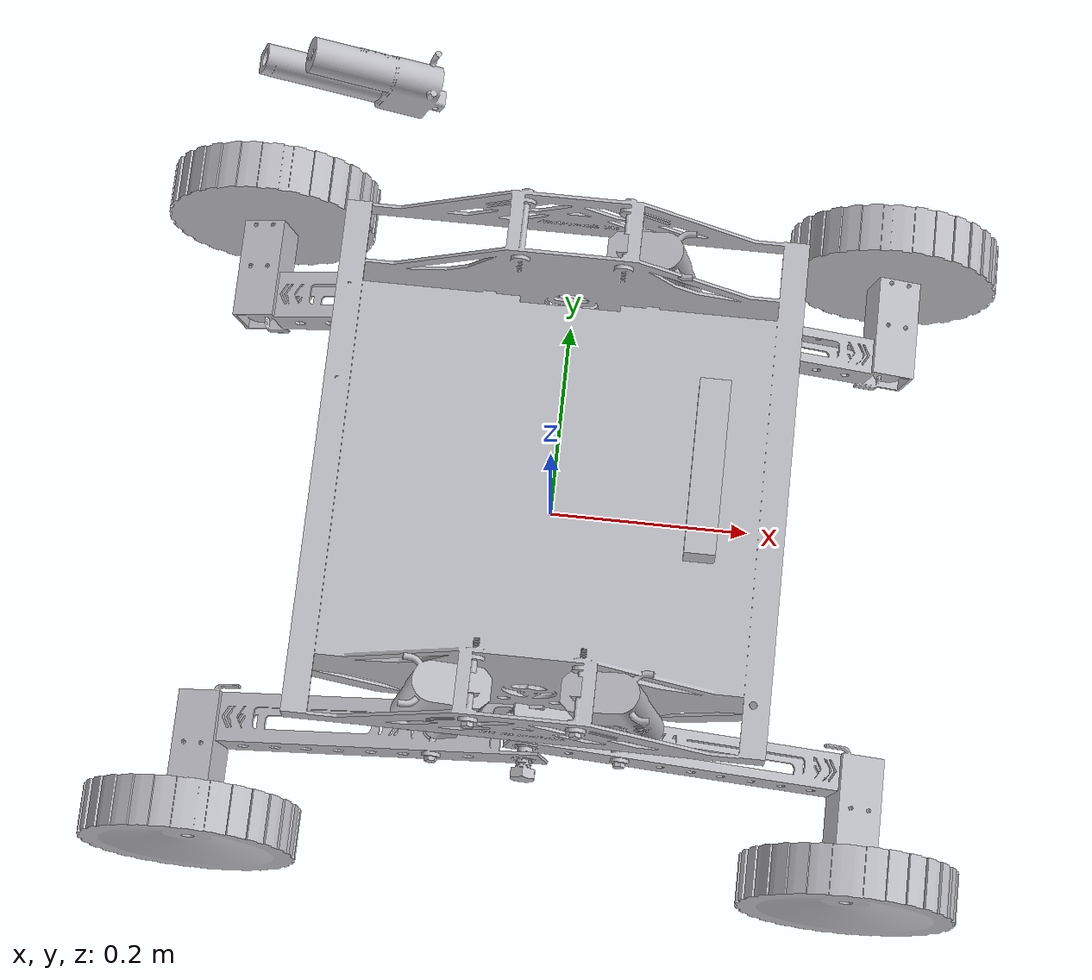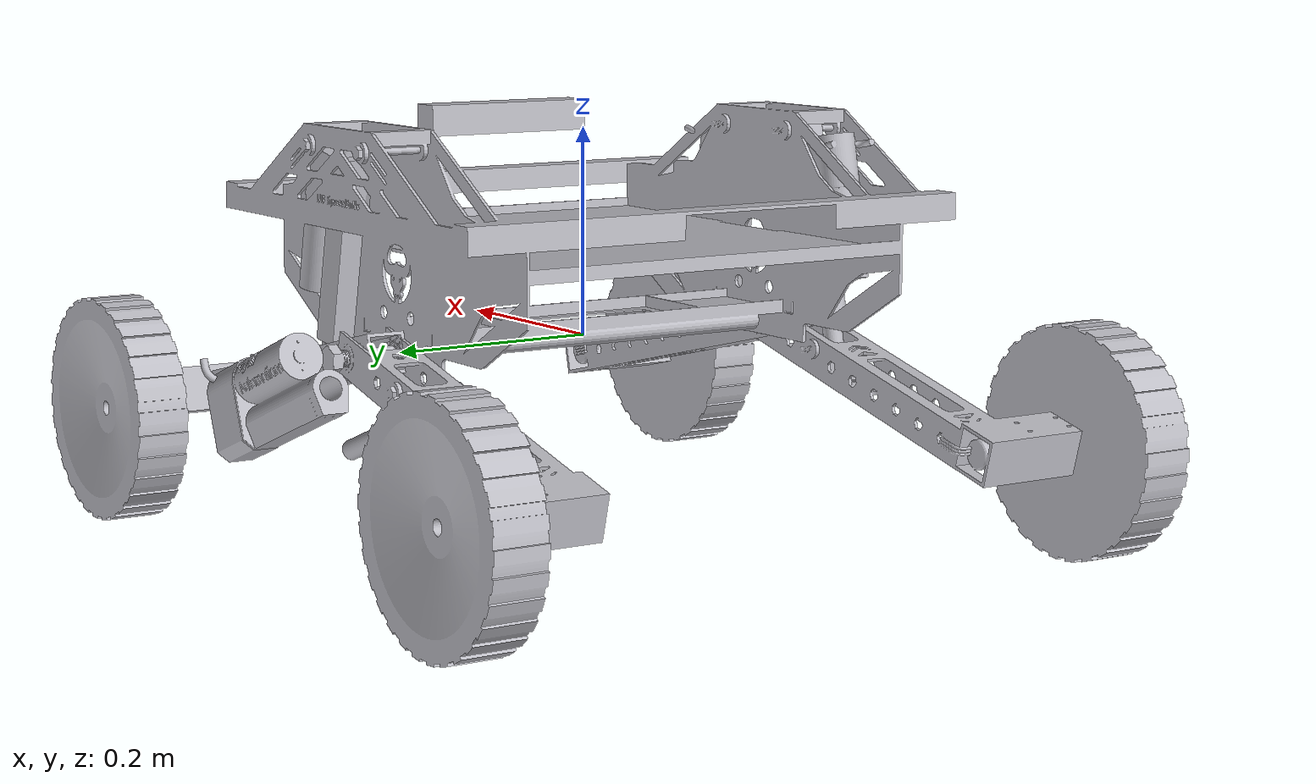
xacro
<?xml version="1.0" ?>
<robot name="urdf" xmlns:xacro="http://www.ros.org/wiki/xacro">

<xacro:include filename="$(find urdf_description)/urdf/materials.xacro" />
<xacro:include filename="$(find urdf_description)/urdf/urdf.trans" />
<xacro:include filename="$(find urdf_description)/urdf/urdf.gazebo" />

<link name="base_link">
  <inertial>
    <origin xyz="0.0013343149399823772 0.00028358189866519725 0.09528357708891128" rpy="0 0 0"/>
    <mass value="12.220889046488532"/>
    <inertia ixx="0.388779" iyy="0.234761" izz="0.562331" ixy="0.000927" iyz="-0.0001" ixz="-0.000707"/>
  </inertial>
  <visual>
    <origin xyz="0 0 0" rpy="0 0 0"/>
    <geometry>
      <mesh filename="file://$(find urdf_description)/meshes/base_link.stl" scale="0.001 0.001 0.001"/>
    </geometry>
    <material name="silver"/>
  </visual>
  <collision>
    <origin xyz="0 0 0" rpy="0 0 0"/>
    <geometry>
      <mesh filename="file://$(find urdf_description)/meshes/base_link.stl" scale="0.001 0.001 0.001"/>
    </geometry>
  </collision>
</link>

<link name="Wheel_f1_1">
  <inertial>
    <origin xyz="-1.1111022085730227e-07 -0.02369331247106643 -1.6015604767383174e-07" rpy="0 0 0"/>
    <mass value="13.815850014548804"/>
    <inertia ixx="0.046183" iyy="0.087048" izz="0.046183" ixy="0.0" iyz="-0.0" ixz="0.0"/>
  </inertial>
  <visual>
    <origin xyz="0.332727 0.312987 0.083488" rpy="0 0 0"/>
    <geometry>
      <mesh filename="file://$(find urdf_description)/meshes/Wheel_f1_1.stl" scale="0.001 0.001 0.001"/>
    </geometry>
    <material name="silver"/>
  </visual>
  <collision>
    <origin xyz="0.332727 0.312987 0.083488" rpy="0 0 0"/>
    <geometry>
      <mesh filename="file://$(find urdf_description)/meshes/Wheel_f1_1.stl" scale="0.001 0.001 0.001"/>
    </geometry>
  </collision>
</link>

<link name="Wheel_b1_1">
  <inertial>
    <origin xyz="-4.454933729136634e-07 -0.02369331247106693 3.717001979403056e-07" rpy="0 0 0"/>
    <mass value="13.815850014548804"/>
    <inertia ixx="0.046183" iyy="0.087048" izz="0.046183" ixy="-0.0" iyz="-0.0" ixz="-0.0"/>
  </inertial>
  <visual>
    <origin xyz="-0.334113 0.312987 0.077759" rpy="0 0 0"/>
    <geometry>
      <mesh filename="file://$(find urdf_description)/meshes/Wheel_b1_1.stl" scale="0.001 0.001 0.001"/>
    </geometry>
    <material name="silver"/>
  </visual>
  <collision>
    <origin xyz="-0.334113 0.312987 0.077759" rpy="0 0 0"/>
    <geometry>
      <mesh filename="file://$(find urdf_description)/meshes/Wheel_b1_1.stl" scale="0.001 0.001 0.001"/>
    </geometry>
  </collision>
</link>

<link name="Wheel_f2_1">
  <inertial>
    <origin xyz="1.7611029162756253e-07 0.023693312471066874 3.839404488781284e-09" rpy="0 0 0"/>
    <mass value="13.815850014548804"/>
    <inertia ixx="0.046183" iyy="0.087048" izz="0.046183" ixy="0.0" iyz="0.0" ixz="-0.0"/>
  </inertial>
  <visual>
    <origin xyz="0.289603 -0.312987 0.183869" rpy="0 0 0"/>
    <geometry>
      <mesh filename="file://$(find urdf_description)/meshes/Wheel_f2_1.stl" scale="0.001 0.001 0.001"/>
    </geometry>
    <material name="silver"/>
  </visual>
  <collision>
    <origin xyz="0.289603 -0.312987 0.183869" rpy="0 0 0"/>
    <geometry>
      <mesh filename="file://$(find urdf_description)/meshes/Wheel_f2_1.stl" scale="0.001 0.001 0.001"/>
    </geometry>
  </collision>
</link>

<link name="Wheel_b2_1">
  <inertial>
    <origin xyz="-6.526775264692475e-08 0.02369331247106704 -6.167566141135339e-08" rpy="0 0 0"/>
    <mass value="13.815850014548804"/>
    <inertia ixx="0.046183" iyy="0.087048" izz="0.046183" ixy="0.0" iyz="0.0" ixz="-0.0"/>
  </inertial>
  <visual>
    <origin xyz="-0.331827 -0.312987 0.086997" rpy="0 0 0"/>
    <geometry>
      <mesh filename="file://$(find urdf_description)/meshes/Wheel_b2_1.stl" scale="0.001 0.001 0.001"/>
    </geometry>
    <material name="silver"/>
  </visual>
  <collision>
    <origin xyz="-0.331827 -0.312987 0.086997" rpy="0 0 0"/>
    <geometry>
      <mesh filename="file://$(find urdf_description)/meshes/Wheel_b2_1.stl" scale="0.001 0.001 0.001"/>
    </geometry>
  </collision>
</link>

<link name="Suspension_f1_1">
  <inertial>
    <origin xyz="-0.24223400246657378 -0.044365793674640275 -0.061553523607869386" rpy="0 0 0"/>
    <mass value="2.1993493776501816"/>
    <inertia ixx="0.004283" iyy="0.029631" izz="0.029875" ixy="-0.003562" iyz="-0.000863" ixz="-0.006668"/>
  </inertial>
  <visual>
    <origin xyz="-0.0 0.2032 0.0" rpy="0 0 0"/>
    <geometry>
      <mesh filename="file://$(find urdf_description)/meshes/Suspension_f1_1.stl" scale="0.001 0.001 0.001"/>
    </geometry>
    <material name="silver"/>
  </visual>
  <collision>
    <origin xyz="-0.0 0.2032 0.0" rpy="0 0 0"/>
    <geometry>
      <mesh filename="file://$(find urdf_description)/meshes/Suspension_f1_1.stl" scale="0.001 0.001 0.001"/>
    </geometry>
  </collision>
</link>

<link name="Suspension_f2_1">
  <inertial>
    <origin xyz="-0.2105956784748399 0.044365793674640774 -0.1345942362333628" rpy="0 0 0"/>
    <mass value="2.19934937765018"/>
    <inertia ixx="0.010794" iyy="0.029631" izz="0.023365" ixy="0.003109" iyz="0.001939" ixz="-0.012988"/>
  </inertial>
  <visual>
    <origin xyz="-0.0 -0.2032 0.0" rpy="0 0 0"/>
    <geometry>
      <mesh filename="file://$(find urdf_description)/meshes/Suspension_f2_1.stl" scale="0.001 0.001 0.001"/>
    </geometry>
    <material name="silver"/>
  </visual>
  <collision>
    <origin xyz="-0.0 -0.2032 0.0" rpy="0 0 0"/>
    <geometry>
      <mesh filename="file://$(find urdf_description)/meshes/Suspension_f2_1.stl" scale="0.001 0.001 0.001"/>
    </geometry>
  </collision>
</link>

<link name="Suspension_b2_1">
  <inertial>
    <origin xyz="0.23818736601940063 0.04183240373390654 -0.06315287162159193" rpy="0 0 0"/>
    <mass value="2.1332036975982693"/>
    <inertia ixx="0.004602" iyy="0.032238" izz="0.032209" ixy="-0.004367" iyz="0.001111" ixz="0.007597"/>
  </inertial>
  <visual>
    <origin xyz="-0.0 -0.2032 0.0" rpy="0 0 0"/>
    <geometry>
      <mesh filename="file://$(find urdf_description)/meshes/Suspension_b2_1.stl" scale="0.001 0.001 0.001"/>
    </geometry>
    <material name="silver"/>
  </visual>
  <collision>
    <origin xyz="-0.0 -0.2032 0.0" rpy="0 0 0"/>
    <geometry>
      <mesh filename="file://$(find urdf_description)/meshes/Suspension_b2_1.stl" scale="0.001 0.001 0.001"/>
    </geometry>
  </collision>
</link>

<link name="Suspension_b1_1">
  <inertial>
    <origin xyz="0.23984757828794934 -0.04183240373390662 -0.05652119703901942" rpy="0 0 0"/>
    <mass value="2.1332036975982764"/>
    <inertia ixx="0.004202" iyy="0.032238" izz="0.03261" ixy="0.004396" iyz="-0.000989" ixz="0.00682"/>
  </inertial>
  <visual>
    <origin xyz="-0.0 0.2032 0.0" rpy="0 0 0"/>
    <geometry>
      <mesh filename="file://$(find urdf_description)/meshes/Suspension_b1_1.stl" scale="0.001 0.001 0.001"/>
    </geometry>
    <material name="silver"/>
  </visual>
  <collision>
    <origin xyz="-0.0 0.2032 0.0" rpy="0 0 0"/>
    <geometry>
      <mesh filename="file://$(find urdf_description)/meshes/Suspension_b1_1.stl" scale="0.001 0.001 0.001"/>
    </geometry>
  </collision>
</link>

<link name="4InchRod_b1_1">
  <inertial>
    <origin xyz="-0.012966113775044225 -4.335870901206462e-08 0.06219411224027272" rpy="0 0 0"/>
    <mass value="0.3175605691662021"/>
    <inertia ixx="0.000523" iyy="0.000546" izz="3.7e-05" ixy="-0.0" iyz="0.0" ixz="0.000106"/>
  </inertial>
  <visual>
    <origin xyz="-0.094063 0.223274 0.016277" rpy="0 0 0"/>
    <geometry>
      <mesh filename="file://$(find urdf_description)/meshes/4InchRod_b1_1.stl" scale="0.001 0.001 0.001"/>
    </geometry>
    <material name="silver"/>
  </visual>
  <collision>
    <origin xyz="-0.094063 0.223274 0.016277" rpy="0 0 0"/>
    <geometry>
      <mesh filename="file://$(find urdf_description)/meshes/4InchRod_b1_1.stl" scale="0.001 0.001 0.001"/>
    </geometry>
  </collision>
</link>

<link name="4InchBase_b1_1">
  <inertial>
    <origin xyz="-0.2252917375182119 0.06657896959015258 0.06967167607247043" rpy="0 0 0"/>
    <mass value="2.5860638753484677"/>
    <inertia ixx="0.006022" iyy="0.007076" izz="0.001574" ixy="0.0" iyz="-0.0" ixz="0.000806"/>
  </inertial>
  <visual>
    <origin xyz="-0.308737 0.289862 -0.048001" rpy="0 0 0"/>
    <geometry>
      <mesh filename="file://$(find urdf_description)/meshes/4InchBase_b1_1.stl" scale="0.001 0.001 0.001"/>
    </geometry>
    <material name="silver"/>
  </visual>
  <collision>
    <origin xyz="-0.308737 0.289862 -0.048001" rpy="0 0 0"/>
    <geometry>
      <mesh filename="file://$(find urdf_description)/meshes/4InchBase_b1_1.stl" scale="0.001 0.001 0.001"/>
    </geometry>
  </collision>
</link>

<link name="4InchRod_f1_1">
  <inertial>
    <origin xyz="0.012786959833396741 -4.333333336603573e-08 0.0622314357296538" rpy="0 0 0"/>
    <mass value="0.3175605691662021"/>
    <inertia ixx="0.000524" iyy="0.000546" izz="3.6e-05" ixy="0.0" iyz="0.0" ixz="-0.000105"/>
  </inertial>
  <visual>
    <origin xyz="0.09377 0.229624 0.017891" rpy="0 0 0"/>
    <geometry>
      <mesh filename="file://$(find urdf_description)/meshes/4InchRod_f1_1.stl" scale="0.001 0.001 0.001"/>
    </geometry>
    <material name="silver"/>
  </visual>
  <collision>
    <origin xyz="0.09377 0.229624 0.017891" rpy="0 0 0"/>
    <geometry>
      <mesh filename="file://$(find urdf_description)/meshes/4InchRod_f1_1.stl" scale="0.001 0.001 0.001"/>
    </geometry>
  </collision>
</link>

<link name="4InchBase_f1_1">
  <inertial>
    <origin xyz="-0.21854360273106221 -0.06666605639613887 0.16146167207163756" rpy="0 0 0"/>
    <mass value="2.5860638753484677"/>
    <inertia ixx="0.006026" iyy="0.007076" izz="0.001569" ixy="0.0" iyz="0.0" ixz="-0.000793"/>
  </inertial>
  <visual>
    <origin xyz="-0.135311 0.162949 0.043883" rpy="0 0 0"/>
    <geometry>
      <mesh filename="file://$(find urdf_description)/meshes/4InchBase_f1_1.stl" scale="0.001 0.001 0.001"/>
    </geometry>
    <material name="silver"/>
  </visual>
  <collision>
    <origin xyz="-0.135311 0.162949 0.043883" rpy="0 0 0"/>
    <geometry>
      <mesh filename="file://$(find urdf_description)/meshes/4InchBase_f1_1.stl" scale="0.001 0.001 0.001"/>
    </geometry>
  </collision>
</link>

<link name="4InchBase_f2_1">
  <inertial>
    <origin xyz="0.19424723938882849 0.1579800304398621 -0.24277998122035874" rpy="0 0 0"/>
    <mass value="2.5860638753484677"/>
    <inertia ixx="0.006112" iyy="0.007076" izz="0.001484" ixy="0.0" iyz="0.0" ixz="-0.000491"/>
  </inertial>
  <visual>
    <origin xyz="0.272521 -0.071653 -0.358369" rpy="0 0 0"/>
    <geometry>
      <mesh filename="file://$(find urdf_description)/meshes/4InchBase_f2_1.stl" scale="0.001 0.001 0.001"/>
    </geometry>
    <material name="silver"/>
  </visual>
  <collision>
    <origin xyz="0.272521 -0.071653 -0.358369" rpy="0 0 0"/>
    <geometry>
      <mesh filename="file://$(find urdf_description)/meshes/4InchBase_f2_1.stl" scale="0.001 0.001 0.001"/>
    </geometry>
  </collision>
</link>

<link name="4InchRod_f2_1">
  <inertial>
    <origin xyz="0.008629382106156824 4.3418000306161275e-08 0.06294326816682969" rpy="0 0 0"/>
    <mass value="0.3175605691662021"/>
    <inertia ixx="0.000536" iyy="0.000546" izz="2.4e-05" ixy="0.0" iyz="-0.0" ixz="-7.1e-05"/>
  </inertial>
  <visual>
    <origin xyz="0.083389 -0.229624 0.046467" rpy="0 0 0"/>
    <geometry>
      <mesh filename="file://$(find urdf_description)/meshes/4InchRod_f2_1.stl" scale="0.001 0.001 0.001"/>
    </geometry>
    <material name="silver"/>
  </visual>
  <collision>
    <origin xyz="0.083389 -0.229624 0.046467" rpy="0 0 0"/>
    <geometry>
      <mesh filename="file://$(find urdf_description)/meshes/4InchRod_f2_1.stl" scale="0.001 0.001 0.001"/>
    </geometry>
  </collision>
</link>

<link name="4InchBase_b2_1">
  <inertial>
    <origin xyz="0.25401982840709597 0.1516120563664343 -0.24084908569362817" rpy="0 0 0"/>
    <mass value="2.5860638753484677"/>
    <inertia ixx="0.006029" iyy="0.007076" izz="0.001566" ixy="0.0" iyz="-0.0" ixz="0.000785"/>
  </inertial>
  <visual>
    <origin xyz="0.170921 -0.071653 -0.358369" rpy="0 0 0"/>
    <geometry>
      <mesh filename="file://$(find urdf_description)/meshes/4InchBase_b2_1.stl" scale="0.001 0.001 0.001"/>
    </geometry>
    <material name="silver"/>
  </visual>
  <collision>
    <origin xyz="0.170921 -0.071653 -0.358369" rpy="0 0 0"/>
    <geometry>
      <mesh filename="file://$(find urdf_description)/meshes/4InchBase_b2_1.stl" scale="0.001 0.001 0.001"/>
    </geometry>
  </collision>
</link>

<link name="4InchRod_b2_1">
  <inertial>
    <origin xyz="-0.20536611829963358 -0.0888699566415809 -0.14706665386796988" rpy="0 0 0"/>
    <mass value="0.3175605691662021"/>
    <inertia ixx="0.000524" iyy="0.000546" izz="3.6e-05" ixy="0.0" iyz="-0.0" ixz="0.000104"/>
  </inertial>
  <visual>
    <origin xyz="-0.286268 -0.312144 -0.190441" rpy="0 0 0"/>
    <geometry>
      <mesh filename="file://$(find urdf_description)/meshes/4InchRod_b2_1.stl" scale="0.001 0.001 0.001"/>
    </geometry>
    <material name="silver"/>
  </visual>
  <collision>
    <origin xyz="-0.286268 -0.312144 -0.190441" rpy="0 0 0"/>
    <geometry>
      <mesh filename="file://$(find urdf_description)/meshes/4InchRod_b2_1.stl" scale="0.001 0.001 0.001"/>
    </geometry>
  </collision>
</link>

<!-- ZED2 Camera Links -->
<link name="zed_camera_link">
  <visual>
    <origin xyz="0 0 0" rpy="0 0 1.5708"/>
    <geometry>
      <box size="0.175 0.03 0.03"/>
    </geometry>
    <material name="silver"/>
  </visual>
  <inertial>
    <mass value="0.16"/>
    <inertia ixx="0.001" ixy="0" ixz="0"
             iyy="0.001" iyz="0" izz="0.001"/>
  </inertial>
  <collision>
    <origin xyz="0 0 0" rpy="0 0 0"/>
    <geometry>
      <box size="0.175 0.03 0.03"/>
    </geometry>
  </collision>
</link>

<link name="zed2_imu_link">
  <inertial>
    <mass value="0.001"/>
    <inertia ixx="0.00001" ixy="0" ixz="0"
             iyy="0.00001" iyz="0" izz="0.00001"/>
  </inertial>
</link>

<joint name="zed2_imu_joint" type="fixed">
  <parent link="zed_camera_link"/>
  <child link="zed2_imu_link"/>
  <origin xyz="0 0 0" rpy="0 0 0"/>
</joint>

<joint name="zed_camera_joint" type="fixed">
  <parent link="base_link"/>
  <child link="zed_camera_link"/>
  <!-- Adjust xyz to where your camera sits on the rover -->
  <origin xyz="0.15 0 0.2" rpy="0 0 0"/>
</joint>

<!-- ==================== JOINTS ==================== -->

<joint name="Wheel_f1" type="continuous">
  <origin xyz="-0.332727 -0.109787 -0.083488" rpy="0 0 0"/>
  <parent link="Suspension_f1_1"/>
  <child link="Wheel_f1_1"/>
  <axis xyz="0.0 1.0 0.0"/>
</joint>

<joint name="Wheel_b1" type="continuous">
  <origin xyz="0.334113 -0.109787 -0.077759" rpy="0 0 0"/>
  <parent link="Suspension_b1_1"/>
  <child link="Wheel_b1_1"/>
  <axis xyz="0.0 1.0 -0.0"/>
</joint>

<joint name="Wheel_f2" type="continuous">
  <origin xyz="-0.3326 0.109787 -0.0834" rpy="0 0 0"/>
  <parent link="Suspension_f2_1"/>
  <child link="Wheel_f2_1"/>
  <axis xyz="-0.0 1.0 -0.0"/>
</joint>

<joint name="Wheel_b2" type="continuous">
  <origin xyz="0.331827 0.109787 -0.086997" rpy="0 0 0"/>
  <parent link="Suspension_b2_1"/>
  <child link="Wheel_b2_1"/>
  <axis xyz="-0.0 1.0 0.0"/>
</joint>

<joint name="Center_DeadAxle_f1" type="fixed">
  <origin xyz="0.0 -0.2032 0.0" rpy="0 0 0"/>
  <parent link="base_link"/>
  <child link="Suspension_f1_1"/>
  <axis xyz="0.0 -1.0 0.0"/>
</joint>

<joint name="Center_DeadAxle_f2" type="fixed">
  <origin xyz="0.0 0.2032 0.0" rpy="0 0 0"/>
  <parent link="base_link"/>
  <child link="Suspension_f2_1"/>
  <axis xyz="-0.0 1.0 -0.0"/>
</joint>

<joint name="Center_DeadAxle_b2" type="fixed">
  <origin xyz="0.0 0.2032 0.0" rpy="0 0 0"/>
  <parent link="base_link"/>
  <child link="Suspension_b2_1"/>
  <axis xyz="-0.0 1.0 -0.0"/>
</joint>

<joint name="Center_DeadAxle_b1" type="fixed">
  <origin xyz="0.0 -0.2032 0.0" rpy="0 0 0"/>
  <parent link="base_link"/>
  <child link="Suspension_b1_1"/>
  <axis xyz="0.0 -1.0 0.0"/>
</joint>

<joint name="LinAct_Stroke_b1" type="fixed">
  <origin xyz="0.094063 -0.020074 -0.016277" rpy="0 0 0"/>
  <parent link="Suspension_b1_1"/>
  <child link="4InchRod_b1_1"/>
  <axis xyz="0.0 1.0 -0.0"/>
</joint>

<joint name="LinAct_Slider_b1" type="fixed">
  <origin xyz="0.214674 -0.066588 0.064278" rpy="0 0 0"/>
  <parent link="4InchRod_b1_1"/>
  <child link="4InchBase_b1_1"/>
  <axis xyz="-0.204096 -0.0 0.978951"/>
  <limit upper="0.0" lower="0.0" effort="100" velocity="100"/>
</joint>

<joint name="LinAct_Stroke_f1" type="fixed">
  <origin xyz="-0.09377 -0.026424 -0.017891" rpy="0 0 0"/>
  <parent link="Suspension_f1_1"/>
  <child link="4InchRod_f1_1"/>
  <axis xyz="-0.0 -1.0 0.0"/>
</joint>

<joint name="LinAct_Slider_f1" type="fixed">
  <origin xyz="0.229081 0.066675 -0.025992" rpy="0 0 0"/>
  <parent link="4InchRod_f1_1"/>
  <child link="4InchBase_f1_1"/>
  <axis xyz="-0.201267 0.0 -0.979536"/>
  <limit upper="0.0" lower="0.0" effort="100" velocity="100"/>
</joint>

<joint name="LinAct_Stroke_f2" type="fixed">
  <origin xyz="-0.083389 0.026424 -0.046467" rpy="0 1.8 0"/>
  <parent link="Suspension_f2_1"/>
  <child link="4InchRod_f2_1"/>
  <axis xyz="0.0 -1.0 0.0"/>
</joint>

<joint name="LinAct_Slider_f2" type="fixed">
  <origin xyz="-0.221015 0.065104 0.078462" rpy="0 0 0"/>
  <parent link="4InchRod_f2_1"/>
  <child link="4InchBase_f2_1"/>
  <axis xyz="0.135829 0.0 0.990732"/>
  <limit upper="0.0" lower="0.0" effort="100" velocity="100"/>
</joint>

<joint name="LinAct_Body_b2" type="fixed">
  <origin xyz="-0.170921 0.071653 0.358369" rpy="0 0 0"/>
  <parent link="base_link"/>
  <child link="4InchBase_b2_1"/>
  <axis xyz="0.0 -1.0 0.0"/>
</joint>

<joint name="LinAct_Stroke_b2" type="fixed">
  <origin xyz="0.286268 0.108944 0.190441" rpy="0 0 0"/>
  <parent link="Suspension_b2_1"/>
  <child link="4InchRod_b2_1"/>
  <axis xyz="-0.0 1.0 -0.0"/>
</joint>

</robot>

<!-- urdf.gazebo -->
<robot name="urdf" xmlns:xacro="http://www.ros.org/wiki/xacro" >

<xacro:property name="body_color" value="Gazebo/Silver" />

<gazebo>
  <plugin filename="ignition-gazebo-diff-drive-system"
          name="ignition::gazebo::systems::DiffDrive">

    <!-- Four wheels via two left/right pairs -->
    <left_joint>Wheel_f2</left_joint>
    <left_joint>Wheel_b2</left_joint>
    <right_joint>Wheel_f1</right_joint>
    <right_joint>Wheel_b1</right_joint>

    <wheel_separation>0.6853</wheel_separation>
    <wheel_radius>0.1017</wheel_radius>

    <!-- Gazebo-internal topic names (NOT ROS topics) -->
    <topic>cmd_vel</topic>
    <odom_topic>odom</odom_topic>
    <frame_id>odom</frame_id>
    <child_frame_id>base_link</child_frame_id>

    <max_linear_velocity>0.5</max_linear_velocity>
    <max_angular_velocity>0.8</max_angular_velocity>
    <max_linear_acceleration>0.5</max_linear_acceleration>
    <max_angular_acceleration>0.5</max_angular_acceleration>
    <max_wheel_torque>5</max_wheel_torque>
    <max_wheel_acceleration>0.5</max_wheel_acceleration>

  </plugin>

  <!-- Needed to publish TF odom->base_link into Gazebo -->
  <plugin filename="ignition-gazebo-pose-publisher-system"
          name="ignition::gazebo::systems::PosePublisher">
    <publish_link_pose>true</publish_link_pose>
    <publish_nested_model_pose>true</publish_nested_model_pose>
  </plugin>
</gazebo>

<!-- ZED camera workings -->
<gazebo reference="zed2_camera_link">
  <sensor name="zed2_depth" type="rgbd_camera">
    <always_on>1</always_on>
    <update_rate>10</update_rate>
    <topic>/zed2/depth/image_raw</topic>
    <frame_id>zed2_camera_link</frame_id>
    <camera>
      <horizontal_fov>1.8</horizontal_fov>
      <image>
        <width>640</width>
        <height>360</height>
        <format>RGB_INT8</format>
      </image>
      <clip>
        <near>0.3</near>
        <far>50.0</far>
      </clip>
    </camera>
  </sensor>
</gazebo>

<gazebo reference="zed2_imu_link">
  <sensor name="imu_sensor" type="imu">
    <always_on>1</always_on>
    <update_rate>100</update_rate>
    <topic>/imu/data</topic>
    <plugin filename="ignition-gazebo-imu-system"
            name="ignition::gazebo::systems::Imu">
    </plugin>
    <ignition_frame_id>zed2_imu_link</ignition_frame_id>
  </sensor>
</gazebo>

<gazebo reference="base_link">
  <material>${body_color}</material>
  <mu1>0.2</mu1>
  <mu2>0.2</mu2>
  <self_collide>true</self_collide>
  <gravity>true</gravity>
</gazebo>

<gazebo reference="Wheel_f1_1">
  <material>${body_color}</material>
  <mu1>1.5</mu1>
  <mu2>0.05</mu2>
  <kp>1000000.0</kp>
  <kd>100.0</kd>
  <minDepth>0.001</minDepth>
  <maxVel>1.0</maxVel>
  <fdir1>1 0 0</fdir1>
  <self_collide>true</self_collide>
</gazebo>

<gazebo reference="Wheel_b1_1">
  <material>${body_color}</material>
  <mu1>1.5</mu1>
  <mu2>0.05</mu2>
  <kp>1000000.0</kp>
  <kd>100.0</kd>
  <minDepth>0.001</minDepth>
  <maxVel>1.0</maxVel>
  <fdir1>1 0 0</fdir1>
  <self_collide>true</self_collide>
</gazebo>

<gazebo reference="Wheel_f2_1">
  <material>${body_color}</material>
  <mu1>1.5</mu1>
  <mu2>0.05</mu2>
  <kp>1000000.0</kp>
  <kd>100.0</kd>
  <minDepth>0.001</minDepth>
  <maxVel>1.0</maxVel>
  <fdir1>1 0 0</fdir1>
  <self_collide>true</self_collide>
</gazebo>

<gazebo reference="Wheel_b2_1">
  <material>${body_color}</material>
  <mu1>1.5</mu1>
  <mu2>0.05</mu2>
  <kp>1000000.0</kp>
  <kd>100.0</kd>
  <minDepth>0.001</minDepth>
  <maxVel>1.0</maxVel>
  <fdir1>1 0 0</fdir1>
  <self_collide>true</self_collide>
</gazebo>

<gazebo reference="Suspension_f1_1">
  <material>${body_color}</material>
  <mu1>0.2</mu1>
  <mu2>0.2</mu2>
  <self_collide>true</self_collide>
</gazebo>

<gazebo reference="Suspension_f2_1">
  <material>${body_color}</material>
  <mu1>0.2</mu1>
  <mu2>0.2</mu2>
  <self_collide>true</self_collide>
</gazebo>

<gazebo reference="Suspension_b2_1">
  <material>${body_color}</material>
  <mu1>0.2</mu1>
  <mu2>0.2</mu2>
  <self_collide>true</self_collide>
</gazebo>

<gazebo reference="Suspension_b1_1">
  <material>${body_color}</material>
  <mu1>0.2</mu1>
  <mu2>0.2</mu2>
  <self_collide>true</self_collide>
</gazebo>

<gazebo reference="4InchRod_b1_1">
  <material>${body_color}</material>
  <mu1>0.2</mu1>
  <mu2>0.2</mu2>
  <self_collide>true</self_collide>
</gazebo>

<gazebo reference="4InchBase_b1_1">
  <material>${body_color}</material>
  <mu1>0.2</mu1>
  <mu2>0.2</mu2>
  <self_collide>true</self_collide>
</gazebo>

<gazebo reference="4InchBase_b1_1">
  <material>${body_color}</material>
  <mu1>0.2</mu1>
  <mu2>0.2</mu2>
  <self_collide>true</self_collide>
</gazebo>

<gazebo reference="4InchBase_f1_1">
  <material>${body_color}</material>
  <mu1>0.2</mu1>
  <mu2>0.2</mu2>
  <self_collide>true</self_collide>
</gazebo>

<gazebo reference="4InchRod_f1_1">
  <material>${body_color}</material>
  <mu1>0.2</mu1>
  <mu2>0.2</mu2>
  <self_collide>true</self_collide>
</gazebo>

<gazebo reference="4InchBase_f1_1">
  <material>${body_color}</material>
  <mu1>0.2</mu1>
  <mu2>0.2</mu2>
  <self_collide>true</self_collide>
</gazebo>

<gazebo reference="4InchBase_f2_1">
  <material>${body_color}</material>
  <mu1>0.2</mu1>
  <mu2>0.2</mu2>
  <self_collide>true</self_collide>
</gazebo>

<gazebo reference="4InchRod_f2_1">
  <material>${body_color}</material>
  <mu1>0.2</mu1>
  <mu2>0.2</mu2>
  <self_collide>true</self_collide>
</gazebo>

<gazebo reference="4InchBase_f2_1">
  <material>${body_color}</material>
  <mu1>0.2</mu1>
  <mu2>0.2</mu2>
  <self_collide>true</self_collide>
</gazebo>

<gazebo reference="4InchBase_b2_1">
  <material>${body_color}</material>
  <mu1>0.2</mu1>
  <mu2>0.2</mu2>
  <self_collide>true</self_collide>
</gazebo>

<gazebo reference="4InchRod_b2_1">
  <material>${body_color}</material>
  <mu1>0.2</mu1>
  <mu2>0.2</mu2>
  <self_collide>true</self_collide>
</gazebo>

<gazebo reference="4InchRod_b2_1">
  <material>${body_color}</material>
  <mu1>0.2</mu1>
  <mu2>0.2</mu2>
  <self_collide>true</self_collide>
</gazebo>

</robot>
